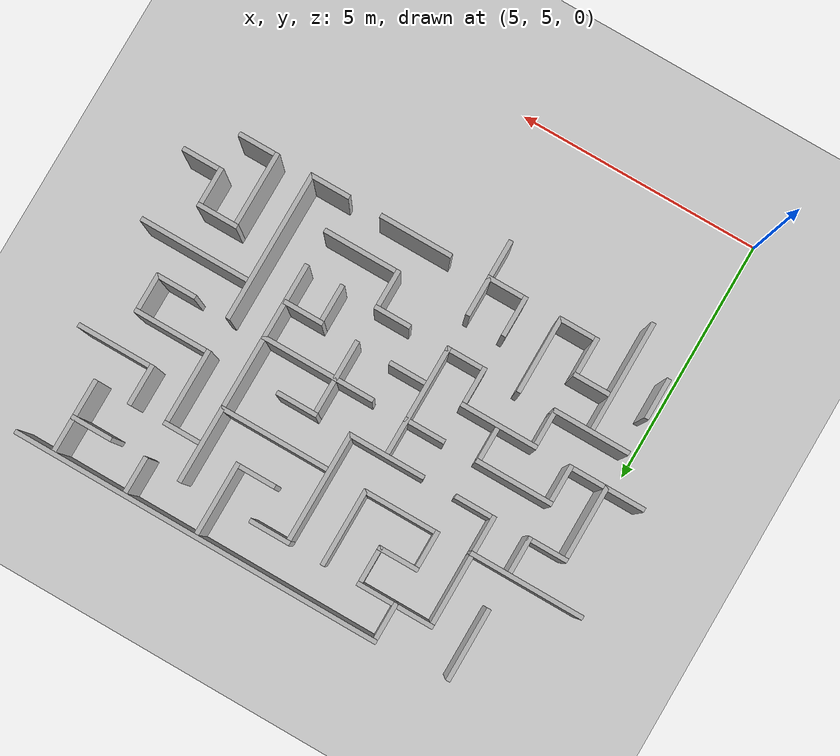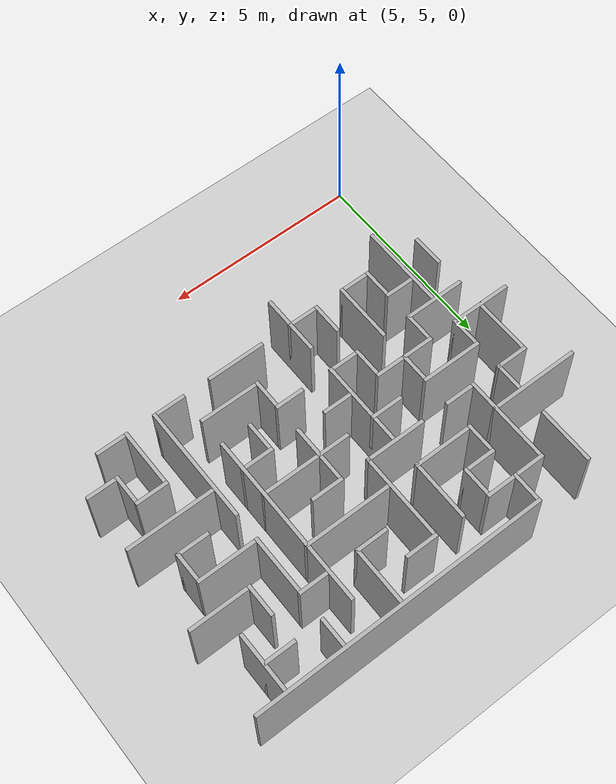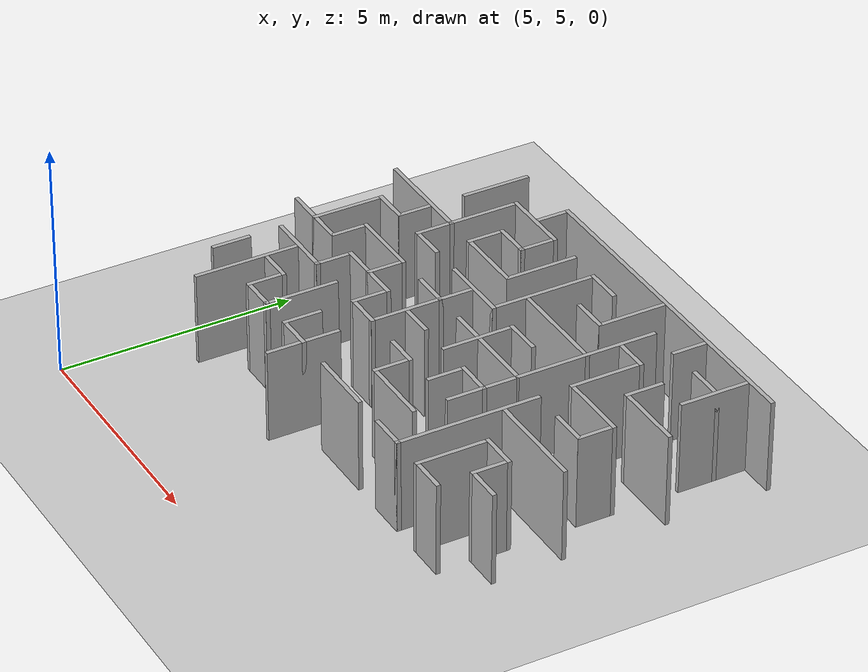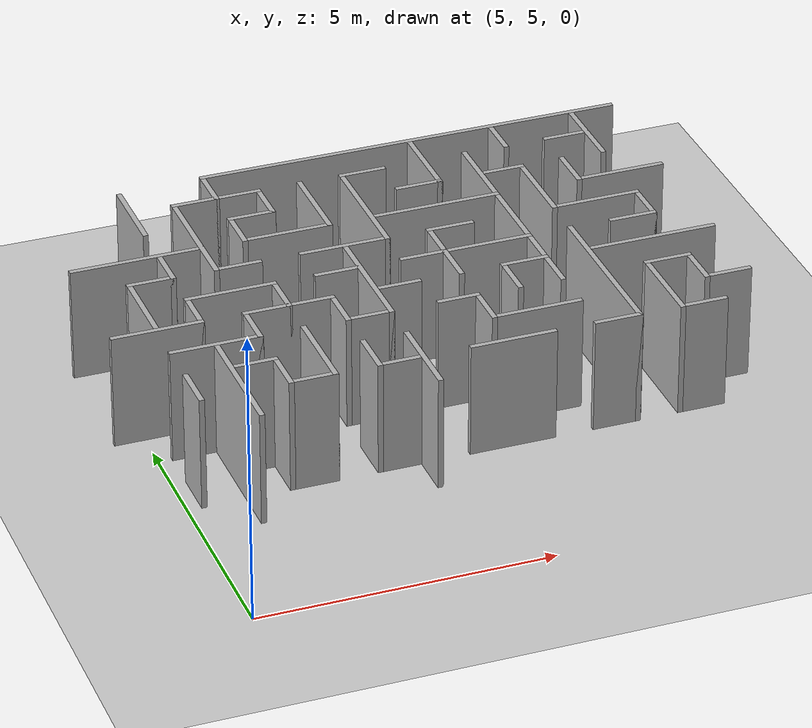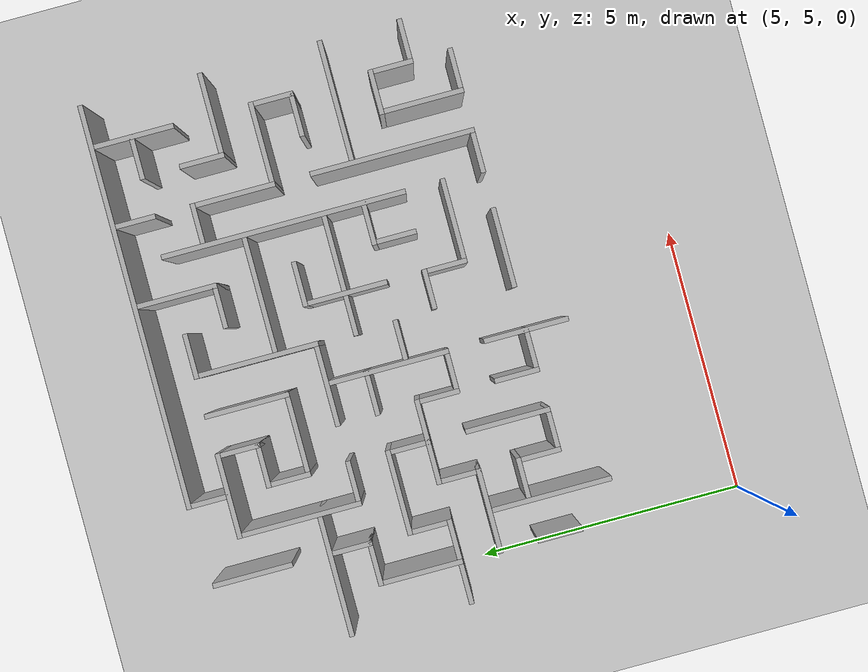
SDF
<sdf version="1.6">
 <world name="slam_world">
  <model name="ground_plane">
   <static>true</static>
   <link name="link">
    <collision name="collision">
     <geometry><plane><normal>0 0 1</normal><size>100 100</size></plane></geometry>
    </collision>
    <visual name="visual">
     <geometry><plane><normal>0 0 1</normal><size>100 100</size></plane></geometry>
     <material>
      <ambient>0.8 0.8 0.8 1</ambient>
      <diffuse>0.8 0.8 0.8 1</diffuse>
      <specular>0.8 0.8 0.8 1</specular>
     </material>
    </visual>
   </link>
  </model>
  <model name="wall_1">
   <static>true</static>
   <pose>11.203703703703704 14.907407407407408 1.0 0 0 0</pose>
   <link name="link">
    <collision name="collision">
     <geometry><box><size>7.500000000000001 0.0925925925925926 2.0</size></box></geometry>
    </collision>
    <visual name="visual">
     <geometry><box><size>7.500000000000001 0.0925925925925926 2.0</size></box></geometry>
     <material><ambient>0.5 0.5 0.5 1</ambient><diffuse>0.7 0.7 0.7 1</diffuse></material>
    </visual>
   </link>
  </model>
  <model name="wall_7">
   <static>true</static>
   <pose>6.018518518518519 14.120370370370372 1.0 0 0 0</pose>
   <link name="link">
    <collision name="collision">
     <geometry><box><size>0.0925925925925926 1.4814814814814816 2.0</size></box></geometry>
    </collision>
    <visual name="visual">
     <geometry><box><size>0.0925925925925926 1.4814814814814816 2.0</size></box></geometry>
     <material><ambient>0.5 0.5 0.5 1</ambient><diffuse>0.7 0.7 0.7 1</diffuse></material>
    </visual>
   </link>
  </model>
  <model name="wall_8">
   <static>true</static>
   <pose>7.500000000000001 14.490740740740742 1.0 0 0 0</pose>
   <link name="link">
    <collision name="collision">
     <geometry><box><size>0.0925925925925926 0.7407407407407408 2.0</size></box></geometry>
    </collision>
    <visual name="visual">
     <geometry><box><size>0.0925925925925926 0.7407407407407408 2.0</size></box></geometry>
     <material><ambient>0.5 0.5 0.5 1</ambient><diffuse>0.7 0.7 0.7 1</diffuse></material>
    </visual>
   </link>
  </model>
  <model name="wall_9">
   <static>true</static>
   <pose>11.203703703703704 14.120370370370372 1.0 0 0 0</pose>
   <link name="link">
    <collision name="collision">
     <geometry><box><size>0.0925925925925926 1.4814814814814816 2.0</size></box></geometry>
    </collision>
    <visual name="visual">
     <geometry><box><size>0.0925925925925926 1.4814814814814816 2.0</size></box></geometry>
     <material><ambient>0.5 0.5 0.5 1</ambient><diffuse>0.7 0.7 0.7 1</diffuse></material>
    </visual>
   </link>
  </model>
  <model name="wall_10">
   <static>true</static>
   <pose>12.685185185185187 14.490740740740742 1.0 0 0 0</pose>
   <link name="link">
    <collision name="collision">
     <geometry><box><size>0.0925925925925926 0.7407407407407408 2.0</size></box></geometry>
    </collision>
    <visual name="visual">
     <geometry><box><size>0.0925925925925926 0.7407407407407408 2.0</size></box></geometry>
     <material><ambient>0.5 0.5 0.5 1</ambient><diffuse>0.7 0.7 0.7 1</diffuse></material>
    </visual>
   </link>
  </model>
  <model name="wall_11">
   <static>true</static>
   <pose>14.166666666666668 14.120370370370372 1.0 0 0 0</pose>
   <link name="link">
    <collision name="collision">
     <geometry><box><size>0.0925925925925926 1.4814814814814816 2.0</size></box></geometry>
    </collision>
    <visual name="visual">
     <geometry><box><size>0.0925925925925926 1.4814814814814816 2.0</size></box></geometry>
     <material><ambient>0.5 0.5 0.5 1</ambient><diffuse>0.7 0.7 0.7 1</diffuse></material>
    </visual>
   </link>
  </model>
  <model name="wall_16">
   <static>true</static>
   <pose>7.500000000000001 14.166666666666668 1.0 0 0 0</pose>
   <link name="link">
    <collision name="collision">
     <geometry><box><size>1.5740740740740742 0.0925925925925926 2.0</size></box></geometry>
    </collision>
    <visual name="visual">
     <geometry><box><size>1.5740740740740742 0.0925925925925926 2.0</size></box></geometry>
     <material><ambient>0.5 0.5 0.5 1</ambient><diffuse>0.7 0.7 0.7 1</diffuse></material>
    </visual>
   </link>
  </model>
  <model name="wall_17">
   <static>true</static>
   <pose>8.981481481481483 13.425925925925927 1.0 0 0 0</pose>
   <link name="link">
    <collision name="collision">
     <geometry><box><size>0.0925925925925926 1.5740740740740742 2.0</size></box></geometry>
    </collision>
    <visual name="visual">
     <geometry><box><size>0.0925925925925926 1.5740740740740742 2.0</size></box></geometry>
     <material><ambient>0.5 0.5 0.5 1</ambient><diffuse>0.7 0.7 0.7 1</diffuse></material>
    </visual>
   </link>
  </model>
  <model name="wall_18">
   <static>true</static>
   <pose>10.092592592592593 14.166666666666668 1.0 0 0 0</pose>
   <link name="link">
    <collision name="collision">
     <geometry><box><size>0.8333333333333334 0.0925925925925926 2.0</size></box></geometry>
    </collision>
    <visual name="visual">
     <geometry><box><size>0.8333333333333334 0.0925925925925926 2.0</size></box></geometry>
     <material><ambient>0.5 0.5 0.5 1</ambient><diffuse>0.7 0.7 0.7 1</diffuse></material>
    </visual>
   </link>
  </model>
  <model name="wall_19">
   <static>true</static>
   <pose>11.944444444444446 11.944444444444446 1.0 0 0 0</pose>
   <link name="link">
    <collision name="collision">
     <geometry><box><size>0.0925925925925926 4.537037037037037 2.0</size></box></geometry>
    </collision>
    <visual name="visual">
     <geometry><box><size>0.0925925925925926 4.537037037037037 2.0</size></box></geometry>
     <material><ambient>0.5 0.5 0.5 1</ambient><diffuse>0.7 0.7 0.7 1</diffuse></material>
    </visual>
   </link>
  </model>
  <model name="wall_20">
   <static>true</static>
   <pose>13.796296296296298 14.166666666666668 1.0 0 0 0</pose>
   <link name="link">
    <collision name="collision">
     <geometry><box><size>0.8333333333333334 0.0925925925925926 2.0</size></box></geometry>
    </collision>
    <visual name="visual">
     <geometry><box><size>0.8333333333333334 0.0925925925925926 2.0</size></box></geometry>
     <material><ambient>0.5 0.5 0.5 1</ambient><diffuse>0.7 0.7 0.7 1</diffuse></material>
    </visual>
   </link>
  </model>
  <model name="wall_21">
   <static>true</static>
   <pose>6.7592592592592595 13.009259259259261 1.0 0 0 0</pose>
   <link name="link">
    <collision name="collision">
     <geometry><box><size>0.0925925925925926 2.2222222222222223 2.0</size></box></geometry>
    </collision>
    <visual name="visual">
     <geometry><box><size>0.0925925925925926 2.2222222222222223 2.0</size></box></geometry>
     <material><ambient>0.5 0.5 0.5 1</ambient><diffuse>0.7 0.7 0.7 1</diffuse></material>
    </visual>
   </link>
  </model>
  <model name="wall_22">
   <static>true</static>
   <pose>8.240740740740742 13.750000000000002 1.0 0 0 0</pose>
   <link name="link">
    <collision name="collision">
     <geometry><box><size>0.0925925925925926 0.7407407407407408 2.0</size></box></geometry>
    </collision>
    <visual name="visual">
     <geometry><box><size>0.0925925925925926 0.7407407407407408 2.0</size></box></geometry>
     <material><ambient>0.5 0.5 0.5 1</ambient><diffuse>0.7 0.7 0.7 1</diffuse></material>
    </visual>
   </link>
  </model>
  <model name="wall_23">
   <static>true</static>
   <pose>9.722222222222223 13.009259259259261 1.0 0 0 0</pose>
   <link name="link">
    <collision name="collision">
     <geometry><box><size>0.0925925925925926 2.2222222222222223 2.0</size></box></geometry>
    </collision>
    <visual name="visual">
     <geometry><box><size>0.0925925925925926 2.2222222222222223 2.0</size></box></geometry>
     <material><ambient>0.5 0.5 0.5 1</ambient><diffuse>0.7 0.7 0.7 1</diffuse></material>
    </visual>
   </link>
  </model>
  <model name="wall_26">
   <static>true</static>
   <pose>7.870370370370371 13.425925925925927 1.0 0 0 0</pose>
   <link name="link">
    <collision name="collision">
     <geometry><box><size>0.8333333333333334 0.0925925925925926 2.0</size></box></geometry>
    </collision>
    <visual name="visual">
     <geometry><box><size>0.8333333333333334 0.0925925925925926 2.0</size></box></geometry>
     <material><ambient>0.5 0.5 0.5 1</ambient><diffuse>0.7 0.7 0.7 1</diffuse></material>
    </visual>
   </link>
  </model>
  <model name="wall_27">
   <static>true</static>
   <pose>10.833333333333334 13.425925925925927 1.0 0 0 0</pose>
   <link name="link">
    <collision name="collision">
     <geometry><box><size>0.8333333333333334 0.0925925925925926 2.0</size></box></geometry>
    </collision>
    <visual name="visual">
     <geometry><box><size>0.8333333333333334 0.0925925925925926 2.0</size></box></geometry>
     <material><ambient>0.5 0.5 0.5 1</ambient><diffuse>0.7 0.7 0.7 1</diffuse></material>
    </visual>
   </link>
  </model>
  <model name="wall_28">
   <static>true</static>
   <pose>12.361111111111112 13.425925925925927 1.0 0 0 0</pose>
   <link name="link">
    <collision name="collision">
     <geometry><box><size>0.7407407407407408 0.0925925925925926 2.0</size></box></geometry>
    </collision>
    <visual name="visual">
     <geometry><box><size>0.7407407407407408 0.0925925925925926 2.0</size></box></geometry>
     <material><ambient>0.5 0.5 0.5 1</ambient><diffuse>0.7 0.7 0.7 1</diffuse></material>
    </visual>
   </link>
  </model>
  <model name="wall_29">
   <static>true</static>
   <pose>13.425925925925927 13.055555555555557 1.0 0 0 0</pose>
   <link name="link">
    <collision name="collision">
     <geometry><box><size>0.0925925925925926 0.8333333333333334 2.0</size></box></geometry>
    </collision>
    <visual name="visual">
     <geometry><box><size>0.0925925925925926 0.8333333333333334 2.0</size></box></geometry>
     <material><ambient>0.5 0.5 0.5 1</ambient><diffuse>0.7 0.7 0.7 1</diffuse></material>
    </visual>
   </link>
  </model>
  <model name="wall_31">
   <static>true</static>
   <pose>7.500000000000001 13.009259259259261 1.0 0 0 0</pose>
   <link name="link">
    <collision name="collision">
     <geometry><box><size>0.0925925925925926 0.7407407407407408 2.0</size></box></geometry>
    </collision>
    <visual name="visual">
     <geometry><box><size>0.0925925925925926 0.7407407407407408 2.0</size></box></geometry>
     <material><ambient>0.5 0.5 0.5 1</ambient><diffuse>0.7 0.7 0.7 1</diffuse></material>
    </visual>
   </link>
  </model>
  <model name="wall_32">
   <static>true</static>
   <pose>12.685185185185187 12.63888888888889 1.0 0 0 0</pose>
   <link name="link">
    <collision name="collision">
     <geometry><box><size>0.0925925925925926 1.4814814814814816 2.0</size></box></geometry>
    </collision>
    <visual name="visual">
     <geometry><box><size>0.0925925925925926 1.4814814814814816 2.0</size></box></geometry>
     <material><ambient>0.5 0.5 0.5 1</ambient><diffuse>0.7 0.7 0.7 1</diffuse></material>
    </visual>
   </link>
  </model>
  <model name="wall_34">
   <static>true</static>
   <pose>5.648148148148149 12.685185185185187 1.0 0 0 0</pose>
   <link name="link">
    <collision name="collision">
     <geometry><box><size>2.314814814814815 0.0925925925925926 2.0</size></box></geometry>
    </collision>
    <visual name="visual">
     <geometry><box><size>2.314814814814815 0.0925925925925926 2.0</size></box></geometry>
     <material><ambient>0.5 0.5 0.5 1</ambient><diffuse>0.7 0.7 0.7 1</diffuse></material>
    </visual>
   </link>
  </model>
  <model name="wall_35">
   <static>true</static>
   <pose>8.287037037037038 12.685185185185187 1.0 0 0 0</pose>
   <link name="link">
    <collision name="collision">
     <geometry><box><size>1.4814814814814816 0.0925925925925926 2.0</size></box></geometry>
    </collision>
    <visual name="visual">
     <geometry><box><size>1.4814814814814816 0.0925925925925926 2.0</size></box></geometry>
     <material><ambient>0.5 0.5 0.5 1</ambient><diffuse>0.7 0.7 0.7 1</diffuse></material>
    </visual>
   </link>
  </model>
  <model name="wall_36">
   <static>true</static>
   <pose>10.879629629629632 12.685185185185187 1.0 0 0 0</pose>
   <link name="link">
    <collision name="collision">
     <geometry><box><size>2.2222222222222223 0.0925925925925926 2.0</size></box></geometry>
    </collision>
    <visual name="visual">
     <geometry><box><size>2.2222222222222223 0.0925925925925926 2.0</size></box></geometry>
     <material><ambient>0.5 0.5 0.5 1</ambient><diffuse>0.7 0.7 0.7 1</diffuse></material>
    </visual>
   </link>
  </model>
  <model name="wall_37">
   <static>true</static>
   <pose>14.212962962962964 12.685185185185187 1.0 0 0 0</pose>
   <link name="link">
    <collision name="collision">
     <geometry><box><size>1.4814814814814816 0.0925925925925926 2.0</size></box></geometry>
    </collision>
    <visual name="visual">
     <geometry><box><size>1.4814814814814816 0.0925925925925926 2.0</size></box></geometry>
     <material><ambient>0.5 0.5 0.5 1</ambient><diffuse>0.7 0.7 0.7 1</diffuse></material>
    </visual>
   </link>
  </model>
  <model name="wall_40">
   <static>true</static>
   <pose>6.018518518518519 12.268518518518519 1.0 0 0 0</pose>
   <link name="link">
    <collision name="collision">
     <geometry><box><size>0.0925925925925926 0.7407407407407408 2.0</size></box></geometry>
    </collision>
    <visual name="visual">
     <geometry><box><size>0.0925925925925926 0.7407407407407408 2.0</size></box></geometry>
     <material><ambient>0.5 0.5 0.5 1</ambient><diffuse>0.7 0.7 0.7 1</diffuse></material>
    </visual>
   </link>
  </model>
  <model name="wall_44">
   <static>true</static>
   <pose>5.648148148148149 11.944444444444446 1.0 0 0 0</pose>
   <link name="link">
    <collision name="collision">
     <geometry><box><size>0.8333333333333334 0.0925925925925926 2.0</size></box></geometry>
    </collision>
    <visual name="visual">
     <geometry><box><size>0.8333333333333334 0.0925925925925926 2.0</size></box></geometry>
     <material><ambient>0.5 0.5 0.5 1</ambient><diffuse>0.7 0.7 0.7 1</diffuse></material>
    </visual>
   </link>
  </model>
  <model name="wall_45">
   <static>true</static>
   <pose>7.1759259259259265 11.944444444444446 1.0 0 0 0</pose>
   <link name="link">
    <collision name="collision">
     <geometry><box><size>0.7407407407407408 0.0925925925925926 2.0</size></box></geometry>
    </collision>
    <visual name="visual">
     <geometry><box><size>0.7407407407407408 0.0925925925925926 2.0</size></box></geometry>
     <material><ambient>0.5 0.5 0.5 1</ambient><diffuse>0.7 0.7 0.7 1</diffuse></material>
    </visual>
   </link>
  </model>
  <model name="wall_46">
   <static>true</static>
   <pose>8.981481481481483 11.944444444444446 1.0 0 0 0</pose>
   <link name="link">
    <collision name="collision">
     <geometry><box><size>1.5740740740740742 0.0925925925925926 2.0</size></box></geometry>
    </collision>
    <visual name="visual">
     <geometry><box><size>1.5740740740740742 0.0925925925925926 2.0</size></box></geometry>
     <material><ambient>0.5 0.5 0.5 1</ambient><diffuse>0.7 0.7 0.7 1</diffuse></material>
    </visual>
   </link>
  </model>
  <model name="wall_47">
   <static>true</static>
   <pose>10.833333333333334 11.944444444444446 1.0 0 0 0</pose>
   <link name="link">
    <collision name="collision">
     <geometry><box><size>0.8333333333333334 0.0925925925925926 2.0</size></box></geometry>
    </collision>
    <visual name="visual">
     <geometry><box><size>0.8333333333333334 0.0925925925925926 2.0</size></box></geometry>
     <material><ambient>0.5 0.5 0.5 1</ambient><diffuse>0.7 0.7 0.7 1</diffuse></material>
    </visual>
   </link>
  </model>
  <model name="wall_48">
   <static>true</static>
   <pose>13.472222222222223 11.944444444444446 1.0 0 0 0</pose>
   <link name="link">
    <collision name="collision">
     <geometry><box><size>1.4814814814814816 0.0925925925925926 2.0</size></box></geometry>
    </collision>
    <visual name="visual">
     <geometry><box><size>1.4814814814814816 0.0925925925925926 2.0</size></box></geometry>
     <material><ambient>0.5 0.5 0.5 1</ambient><diffuse>0.7 0.7 0.7 1</diffuse></material>
    </visual>
   </link>
  </model>
  <model name="wall_50">
   <static>true</static>
   <pose>5.277777777777779 11.157407407407408 1.0 0 0 0</pose>
   <link name="link">
    <collision name="collision">
     <geometry><box><size>0.0925925925925926 1.4814814814814816 2.0</size></box></geometry>
    </collision>
    <visual name="visual">
     <geometry><box><size>0.0925925925925926 1.4814814814814816 2.0</size></box></geometry>
     <material><ambient>0.5 0.5 0.5 1</ambient><diffuse>0.7 0.7 0.7 1</diffuse></material>
    </visual>
   </link>
  </model>
  <model name="wall_51">
   <static>true</static>
   <pose>8.981481481481483 10.787037037037038 1.0 0 0 0</pose>
   <link name="link">
    <collision name="collision">
     <geometry><box><size>0.0925925925925926 2.2222222222222223 2.0</size></box></geometry>
    </collision>
    <visual name="visual">
     <geometry><box><size>0.0925925925925926 2.2222222222222223 2.0</size></box></geometry>
     <material><ambient>0.5 0.5 0.5 1</ambient><diffuse>0.7 0.7 0.7 1</diffuse></material>
    </visual>
   </link>
  </model>
  <model name="wall_52">
   <static>true</static>
   <pose>10.462962962962964 11.157407407407408 1.0 0 0 0</pose>
   <link name="link">
    <collision name="collision">
     <geometry><box><size>0.0925925925925926 1.4814814814814816 2.0</size></box></geometry>
    </collision>
    <visual name="visual">
     <geometry><box><size>0.0925925925925926 1.4814814814814816 2.0</size></box></geometry>
     <material><ambient>0.5 0.5 0.5 1</ambient><diffuse>0.7 0.7 0.7 1</diffuse></material>
    </visual>
   </link>
  </model>
  <model name="wall_53">
   <static>true</static>
   <pose>14.166666666666668 11.527777777777779 1.0 0 0 0</pose>
   <link name="link">
    <collision name="collision">
     <geometry><box><size>0.0925925925925926 0.7407407407407408 2.0</size></box></geometry>
    </collision>
    <visual name="visual">
     <geometry><box><size>0.0925925925925926 0.7407407407407408 2.0</size></box></geometry>
     <material><ambient>0.5 0.5 0.5 1</ambient><diffuse>0.7 0.7 0.7 1</diffuse></material>
    </visual>
   </link>
  </model>
  <model name="wall_57">
   <static>true</static>
   <pose>6.7592592592592595 11.203703703703704 1.0 0 0 0</pose>
   <link name="link">
    <collision name="collision">
     <geometry><box><size>1.5740740740740742 0.0925925925925926 2.0</size></box></geometry>
    </collision>
    <visual name="visual">
     <geometry><box><size>1.5740740740740742 0.0925925925925926 2.0</size></box></geometry>
     <material><ambient>0.5 0.5 0.5 1</ambient><diffuse>0.7 0.7 0.7 1</diffuse></material>
    </visual>
   </link>
  </model>
  <model name="wall_58">
   <static>true</static>
   <pose>8.611111111111112 11.203703703703704 1.0 0 0 0</pose>
   <link name="link">
    <collision name="collision">
     <geometry><box><size>0.8333333333333334 0.0925925925925926 2.0</size></box></geometry>
    </collision>
    <visual name="visual">
     <geometry><box><size>0.8333333333333334 0.0925925925925926 2.0</size></box></geometry>
     <material><ambient>0.5 0.5 0.5 1</ambient><diffuse>0.7 0.7 0.7 1</diffuse></material>
    </visual>
   </link>
  </model>
  <model name="wall_59">
   <static>true</static>
   <pose>10.833333333333334 11.203703703703704 1.0 0 0 0</pose>
   <link name="link">
    <collision name="collision">
     <geometry><box><size>2.314814814814815 0.0925925925925926 2.0</size></box></geometry>
    </collision>
    <visual name="visual">
     <geometry><box><size>2.314814814814815 0.0925925925925926 2.0</size></box></geometry>
     <material><ambient>0.5 0.5 0.5 1</ambient><diffuse>0.7 0.7 0.7 1</diffuse></material>
    </visual>
   </link>
  </model>
  <model name="wall_60">
   <static>true</static>
   <pose>12.685185185185187 9.722222222222223 1.0 0 0 0</pose>
   <link name="link">
    <collision name="collision">
     <geometry><box><size>0.0925925925925926 3.055555555555556 2.0</size></box></geometry>
    </collision>
    <visual name="visual">
     <geometry><box><size>0.0925925925925926 3.055555555555556 2.0</size></box></geometry>
     <material><ambient>0.5 0.5 0.5 1</ambient><diffuse>0.7 0.7 0.7 1</diffuse></material>
    </visual>
   </link>
  </model>
  <model name="wall_61">
   <static>true</static>
   <pose>13.796296296296298 11.203703703703704 1.0 0 0 0</pose>
   <link name="link">
    <collision name="collision">
     <geometry><box><size>0.8333333333333334 0.0925925925925926 2.0</size></box></geometry>
    </collision>
    <visual name="visual">
     <geometry><box><size>0.8333333333333334 0.0925925925925926 2.0</size></box></geometry>
     <material><ambient>0.5 0.5 0.5 1</ambient><diffuse>0.7 0.7 0.7 1</diffuse></material>
    </visual>
   </link>
  </model>
  <model name="wall_64">
   <static>true</static>
   <pose>6.018518518518519 10.787037037037038 1.0 0 0 0</pose>
   <link name="link">
    <collision name="collision">
     <geometry><box><size>0.0925925925925926 0.7407407407407408 2.0</size></box></geometry>
    </collision>
    <visual name="visual">
     <geometry><box><size>0.0925925925925926 0.7407407407407408 2.0</size></box></geometry>
     <material><ambient>0.5 0.5 0.5 1</ambient><diffuse>0.7 0.7 0.7 1</diffuse></material>
    </visual>
   </link>
  </model>
  <model name="wall_65">
   <static>true</static>
   <pose>7.500000000000001 10.787037037037038 1.0 0 0 0</pose>
   <link name="link">
    <collision name="collision">
     <geometry><box><size>0.0925925925925926 0.7407407407407408 2.0</size></box></geometry>
    </collision>
    <visual name="visual">
     <geometry><box><size>0.0925925925925926 0.7407407407407408 2.0</size></box></geometry>
     <material><ambient>0.5 0.5 0.5 1</ambient><diffuse>0.7 0.7 0.7 1</diffuse></material>
    </visual>
   </link>
  </model>
  <model name="wall_68">
   <static>true</static>
   <pose>5.277777777777779 10.462962962962964 1.0 0 0 0</pose>
   <link name="link">
    <collision name="collision">
     <geometry><box><size>1.5740740740740742 0.0925925925925926 2.0</size></box></geometry>
    </collision>
    <visual name="visual">
     <geometry><box><size>1.5740740740740742 0.0925925925925926 2.0</size></box></geometry>
     <material><ambient>0.5 0.5 0.5 1</ambient><diffuse>0.7 0.7 0.7 1</diffuse></material>
    </visual>
   </link>
  </model>
  <model name="wall_69">
   <static>true</static>
   <pose>7.500000000000001 10.462962962962964 1.0 0 0 0</pose>
   <link name="link">
    <collision name="collision">
     <geometry><box><size>1.5740740740740742 0.0925925925925926 2.0</size></box></geometry>
    </collision>
    <visual name="visual">
     <geometry><box><size>1.5740740740740742 0.0925925925925926 2.0</size></box></geometry>
     <material><ambient>0.5 0.5 0.5 1</ambient><diffuse>0.7 0.7 0.7 1</diffuse></material>
    </visual>
   </link>
  </model>
  <model name="wall_70">
   <static>true</static>
   <pose>9.398148148148149 10.462962962962964 1.0 0 0 0</pose>
   <link name="link">
    <collision name="collision">
     <geometry><box><size>0.7407407407407408 0.0925925925925926 2.0</size></box></geometry>
    </collision>
    <visual name="visual">
     <geometry><box><size>0.7407407407407408 0.0925925925925926 2.0</size></box></geometry>
     <material><ambient>0.5 0.5 0.5 1</ambient><diffuse>0.7 0.7 0.7 1</diffuse></material>
    </visual>
   </link>
  </model>
  <model name="wall_71">
   <static>true</static>
   <pose>11.574074074074074 10.462962962962964 1.0 0 0 0</pose>
   <link name="link">
    <collision name="collision">
     <geometry><box><size>0.8333333333333334 0.0925925925925926 2.0</size></box></geometry>
    </collision>
    <visual name="visual">
     <geometry><box><size>0.8333333333333334 0.0925925925925926 2.0</size></box></geometry>
     <material><ambient>0.5 0.5 0.5 1</ambient><diffuse>0.7 0.7 0.7 1</diffuse></material>
    </visual>
   </link>
  </model>
  <model name="wall_72">
   <static>true</static>
   <pose>13.842592592592593 10.462962962962964 1.0 0 0 0</pose>
   <link name="link">
    <collision name="collision">
     <geometry><box><size>2.2222222222222223 0.0925925925925926 2.0</size></box></geometry>
    </collision>
    <visual name="visual">
     <geometry><box><size>2.2222222222222223 0.0925925925925926 2.0</size></box></geometry>
     <material><ambient>0.5 0.5 0.5 1</ambient><diffuse>0.7 0.7 0.7 1</diffuse></material>
    </visual>
   </link>
  </model>
  <model name="wall_74">
   <static>true</static>
   <pose>6.7592592592592595 10.046296296296298 1.0 0 0 0</pose>
   <link name="link">
    <collision name="collision">
     <geometry><box><size>0.0925925925925926 0.7407407407407408 2.0</size></box></geometry>
    </collision>
    <visual name="visual">
     <geometry><box><size>0.0925925925925926 0.7407407407407408 2.0</size></box></geometry>
     <material><ambient>0.5 0.5 0.5 1</ambient><diffuse>0.7 0.7 0.7 1</diffuse></material>
    </visual>
   </link>
  </model>
  <model name="wall_75">
   <static>true</static>
   <pose>8.240740740740742 10.046296296296298 1.0 0 0 0</pose>
   <link name="link">
    <collision name="collision">
     <geometry><box><size>0.0925925925925926 0.7407407407407408 2.0</size></box></geometry>
    </collision>
    <visual name="visual">
     <geometry><box><size>0.0925925925925926 0.7407407407407408 2.0</size></box></geometry>
     <material><ambient>0.5 0.5 0.5 1</ambient><diffuse>0.7 0.7 0.7 1</diffuse></material>
    </visual>
   </link>
  </model>
  <model name="wall_77">
   <static>true</static>
   <pose>11.203703703703704 10.046296296296298 1.0 0 0 0</pose>
   <link name="link">
    <collision name="collision">
     <geometry><box><size>0.0925925925925926 0.7407407407407408 2.0</size></box></geometry>
    </collision>
    <visual name="visual">
     <geometry><box><size>0.0925925925925926 0.7407407407407408 2.0</size></box></geometry>
     <material><ambient>0.5 0.5 0.5 1</ambient><diffuse>0.7 0.7 0.7 1</diffuse></material>
    </visual>
   </link>
  </model>
  <model name="wall_79">
   <static>true</static>
   <pose>6.018518518518519 9.722222222222223 1.0 0 0 0</pose>
   <link name="link">
    <collision name="collision">
     <geometry><box><size>1.5740740740740742 0.0925925925925926 2.0</size></box></geometry>
    </collision>
    <visual name="visual">
     <geometry><box><size>1.5740740740740742 0.0925925925925926 2.0</size></box></geometry>
     <material><ambient>0.5 0.5 0.5 1</ambient><diffuse>0.7 0.7 0.7 1</diffuse></material>
    </visual>
   </link>
  </model>
  <model name="wall_80">
   <static>true</static>
   <pose>7.500000000000001 8.981481481481483 1.0 0 0 0</pose>
   <link name="link">
    <collision name="collision">
     <geometry><box><size>0.0925925925925926 1.5740740740740742 2.0</size></box></geometry>
    </collision>
    <visual name="visual">
     <geometry><box><size>0.0925925925925926 1.5740740740740742 2.0</size></box></geometry>
     <material><ambient>0.5 0.5 0.5 1</ambient><diffuse>0.7 0.7 0.7 1</diffuse></material>
    </visual>
   </link>
  </model>
  <model name="wall_81">
   <static>true</static>
   <pose>8.657407407407408 9.722222222222223 1.0 0 0 0</pose>
   <link name="link">
    <collision name="collision">
     <geometry><box><size>0.7407407407407408 0.0925925925925926 2.0</size></box></geometry>
    </collision>
    <visual name="visual">
     <geometry><box><size>0.7407407407407408 0.0925925925925926 2.0</size></box></geometry>
     <material><ambient>0.5 0.5 0.5 1</ambient><diffuse>0.7 0.7 0.7 1</diffuse></material>
    </visual>
   </link>
  </model>
  <model name="wall_82">
   <static>true</static>
   <pose>10.13888888888889 9.722222222222223 1.0 0 0 0</pose>
   <link name="link">
    <collision name="collision">
     <geometry><box><size>0.7407407407407408 0.0925925925925926 2.0</size></box></geometry>
    </collision>
    <visual name="visual">
     <geometry><box><size>0.7407407407407408 0.0925925925925926 2.0</size></box></geometry>
     <material><ambient>0.5 0.5 0.5 1</ambient><diffuse>0.7 0.7 0.7 1</diffuse></material>
    </visual>
   </link>
  </model>
  <model name="wall_83">
   <static>true</static>
   <pose>13.796296296296298 9.722222222222223 1.0 0 0 0</pose>
   <link name="link">
    <collision name="collision">
     <geometry><box><size>0.8333333333333334 0.0925925925925926 2.0</size></box></geometry>
    </collision>
    <visual name="visual">
     <geometry><box><size>0.8333333333333334 0.0925925925925926 2.0</size></box></geometry>
     <material><ambient>0.5 0.5 0.5 1</ambient><diffuse>0.7 0.7 0.7 1</diffuse></material>
    </visual>
   </link>
  </model>
  <model name="wall_85">
   <static>true</static>
   <pose>6.018518518518519 8.564814814814815 1.0 0 0 0</pose>
   <link name="link">
    <collision name="collision">
     <geometry><box><size>0.0925925925925926 2.2222222222222223 2.0</size></box></geometry>
    </collision>
    <visual name="visual">
     <geometry><box><size>0.0925925925925926 2.2222222222222223 2.0</size></box></geometry>
     <material><ambient>0.5 0.5 0.5 1</ambient><diffuse>0.7 0.7 0.7 1</diffuse></material>
    </visual>
   </link>
  </model>
  <model name="wall_86">
   <static>true</static>
   <pose>10.462962962962964 9.305555555555557 1.0 0 0 0</pose>
   <link name="link">
    <collision name="collision">
     <geometry><box><size>0.0925925925925926 0.7407407407407408 2.0</size></box></geometry>
    </collision>
    <visual name="visual">
     <geometry><box><size>0.0925925925925926 0.7407407407407408 2.0</size></box></geometry>
     <material><ambient>0.5 0.5 0.5 1</ambient><diffuse>0.7 0.7 0.7 1</diffuse></material>
    </visual>
   </link>
  </model>
  <model name="wall_87">
   <static>true</static>
   <pose>13.425925925925927 8.935185185185187 1.0 0 0 0</pose>
   <link name="link">
    <collision name="collision">
     <geometry><box><size>0.0925925925925926 1.4814814814814816 2.0</size></box></geometry>
    </collision>
    <visual name="visual">
     <geometry><box><size>0.0925925925925926 1.4814814814814816 2.0</size></box></geometry>
     <material><ambient>0.5 0.5 0.5 1</ambient><diffuse>0.7 0.7 0.7 1</diffuse></material>
    </visual>
   </link>
  </model>
  <model name="wall_88">
   <static>true</static>
   <pose>14.166666666666668 9.305555555555557 1.0 0 0 0</pose>
   <link name="link">
    <collision name="collision">
     <geometry><box><size>0.0925925925925926 0.7407407407407408 2.0</size></box></geometry>
    </collision>
    <visual name="visual">
     <geometry><box><size>0.0925925925925926 0.7407407407407408 2.0</size></box></geometry>
     <material><ambient>0.5 0.5 0.5 1</ambient><diffuse>0.7 0.7 0.7 1</diffuse></material>
    </visual>
   </link>
  </model>
  <model name="wall_91">
   <static>true</static>
   <pose>5.277777777777779 8.611111111111112 1.0 0 0 0</pose>
   <link name="link">
    <collision name="collision">
     <geometry><box><size>0.0925925925925926 0.8333333333333334 2.0</size></box></geometry>
    </collision>
    <visual name="visual">
     <geometry><box><size>0.0925925925925926 0.8333333333333334 2.0</size></box></geometry>
     <material><ambient>0.5 0.5 0.5 1</ambient><diffuse>0.7 0.7 0.7 1</diffuse></material>
    </visual>
   </link>
  </model>
  <model name="wall_92">
   <static>true</static>
   <pose>6.435185185185186 8.981481481481483 1.0 0 0 0</pose>
   <link name="link">
    <collision name="collision">
     <geometry><box><size>0.7407407407407408 0.0925925925925926 2.0</size></box></geometry>
    </collision>
    <visual name="visual">
     <geometry><box><size>0.7407407407407408 0.0925925925925926 2.0</size></box></geometry>
     <material><ambient>0.5 0.5 0.5 1</ambient><diffuse>0.7 0.7 0.7 1</diffuse></material>
    </visual>
   </link>
  </model>
  <model name="wall_93">
   <static>true</static>
   <pose>8.240740740740742 8.611111111111112 1.0 0 0 0</pose>
   <link name="link">
    <collision name="collision">
     <geometry><box><size>0.0925925925925926 0.8333333333333334 2.0</size></box></geometry>
    </collision>
    <visual name="visual">
     <geometry><box><size>0.0925925925925926 0.8333333333333334 2.0</size></box></geometry>
     <material><ambient>0.5 0.5 0.5 1</ambient><diffuse>0.7 0.7 0.7 1</diffuse></material>
    </visual>
   </link>
  </model>
  <model name="wall_94">
   <static>true</static>
   <pose>8.981481481481483 8.240740740740742 1.0 0 0 0</pose>
   <link name="link">
    <collision name="collision">
     <geometry><box><size>0.0925925925925926 1.5740740740740742 2.0</size></box></geometry>
    </collision>
    <visual name="visual">
     <geometry><box><size>0.0925925925925926 1.5740740740740742 2.0</size></box></geometry>
     <material><ambient>0.5 0.5 0.5 1</ambient><diffuse>0.7 0.7 0.7 1</diffuse></material>
    </visual>
   </link>
  </model>
  <model name="wall_95">
   <static>true</static>
   <pose>11.250000000000002 8.981481481481483 1.0 0 0 0</pose>
   <link name="link">
    <collision name="collision">
     <geometry><box><size>1.4814814814814816 0.0925925925925926 2.0</size></box></geometry>
    </collision>
    <visual name="visual">
     <geometry><box><size>1.4814814814814816 0.0925925925925926 2.0</size></box></geometry>
     <material><ambient>0.5 0.5 0.5 1</ambient><diffuse>0.7 0.7 0.7 1</diffuse></material>
    </visual>
   </link>
  </model>
  <model name="wall_96">
   <static>true</static>
   <pose>14.583333333333334 8.981481481481483 1.0 0 0 0</pose>
   <link name="link">
    <collision name="collision">
     <geometry><box><size>0.7407407407407408 0.0925925925925926 2.0</size></box></geometry>
    </collision>
    <visual name="visual">
     <geometry><box><size>0.7407407407407408 0.0925925925925926 2.0</size></box></geometry>
     <material><ambient>0.5 0.5 0.5 1</ambient><diffuse>0.7 0.7 0.7 1</diffuse></material>
    </visual>
   </link>
  </model>
  <model name="wall_97">
   <static>true</static>
   <pose>6.7592592592592595 8.564814814814815 1.0 0 0 0</pose>
   <link name="link">
    <collision name="collision">
     <geometry><box><size>0.0925925925925926 0.7407407407407408 2.0</size></box></geometry>
    </collision>
    <visual name="visual">
     <geometry><box><size>0.0925925925925926 0.7407407407407408 2.0</size></box></geometry>
     <material><ambient>0.5 0.5 0.5 1</ambient><diffuse>0.7 0.7 0.7 1</diffuse></material>
    </visual>
   </link>
  </model>
  <model name="wall_101">
   <static>true</static>
   <pose>7.1759259259259265 8.240740740740742 1.0 0 0 0</pose>
   <link name="link">
    <collision name="collision">
     <geometry><box><size>0.7407407407407408 0.0925925925925926 2.0</size></box></geometry>
    </collision>
    <visual name="visual">
     <geometry><box><size>0.7407407407407408 0.0925925925925926 2.0</size></box></geometry>
     <material><ambient>0.5 0.5 0.5 1</ambient><diffuse>0.7 0.7 0.7 1</diffuse></material>
    </visual>
   </link>
  </model>
  <model name="wall_102">
   <static>true</static>
   <pose>8.657407407407408 8.240740740740742 1.0 0 0 0</pose>
   <link name="link">
    <collision name="collision">
     <geometry><box><size>0.7407407407407408 0.0925925925925926 2.0</size></box></geometry>
    </collision>
    <visual name="visual">
     <geometry><box><size>0.7407407407407408 0.0925925925925926 2.0</size></box></geometry>
     <material><ambient>0.5 0.5 0.5 1</ambient><diffuse>0.7 0.7 0.7 1</diffuse></material>
    </visual>
   </link>
  </model>
  <model name="wall_103">
   <static>true</static>
   <pose>10.50925925925926 8.240740740740742 1.0 0 0 0</pose>
   <link name="link">
    <collision name="collision">
     <geometry><box><size>1.4814814814814816 0.0925925925925926 2.0</size></box></geometry>
    </collision>
    <visual name="visual">
     <geometry><box><size>1.4814814814814816 0.0925925925925926 2.0</size></box></geometry>
     <material><ambient>0.5 0.5 0.5 1</ambient><diffuse>0.7 0.7 0.7 1</diffuse></material>
    </visual>
   </link>
  </model>
  <model name="wall_104">
   <static>true</static>
   <pose>12.314814814814817 8.240740740740742 1.0 0 0 0</pose>
   <link name="link">
    <collision name="collision">
     <geometry><box><size>0.8333333333333334 0.0925925925925926 2.0</size></box></geometry>
    </collision>
    <visual name="visual">
     <geometry><box><size>0.8333333333333334 0.0925925925925926 2.0</size></box></geometry>
     <material><ambient>0.5 0.5 0.5 1</ambient><diffuse>0.7 0.7 0.7 1</diffuse></material>
    </visual>
   </link>
  </model>
  <model name="wall_105">
   <static>true</static>
   <pose>13.842592592592593 8.240740740740742 1.0 0 0 0</pose>
   <link name="link">
    <collision name="collision">
     <geometry><box><size>0.7407407407407408 0.0925925925925926 2.0</size></box></geometry>
    </collision>
    <visual name="visual">
     <geometry><box><size>0.7407407407407408 0.0925925925925926 2.0</size></box></geometry>
     <material><ambient>0.5 0.5 0.5 1</ambient><diffuse>0.7 0.7 0.7 1</diffuse></material>
    </visual>
   </link>
  </model>
 </world>
</sdf>
